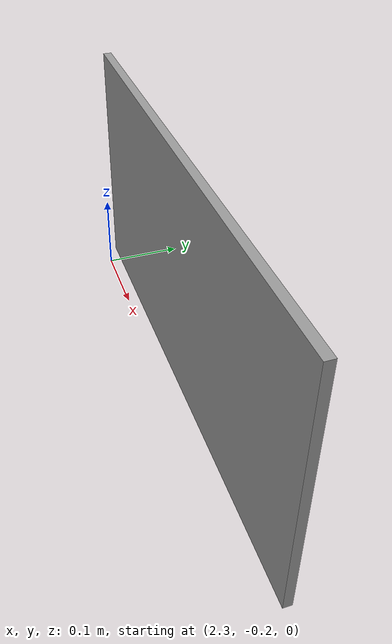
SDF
<?xml version='1.0'?>
<sdf version='1.7'>
  <model name='Wood_0.6'>
    <pose>1.4345 -0.0925 0 0 -0 0</pose>
    <link name='Wall_4'>
      <collision name='Wall_4_Collision'>
        <geometry>
          <box>
            <size>0.6 0.01 0.3</size>
          </box>
        </geometry>
        <pose>0 0 0.15 0 -0 0</pose>
      </collision>
      <visual name='Wall_4_Visual'>
        <pose>0 0 0.15 0 -0 0</pose>
        <geometry>
          <box>
            <size>0.6 0.01 0.3</size>
          </box>
        </geometry>
        <material>
          <script>
            <uri>file://media/materials/scripts/gazebo.material</uri>
            <name>Gazebo/Grey</name>
          </script>
          <ambient>1 1 1 1</ambient>
        </material>
        <meta>
          <layer>0</layer>
        </meta>
      </visual>
      <pose>1.1345 -0.0875 0 0 -0 0</pose>
    </link>
    <static>1</static>
  </model>
</sdf>
